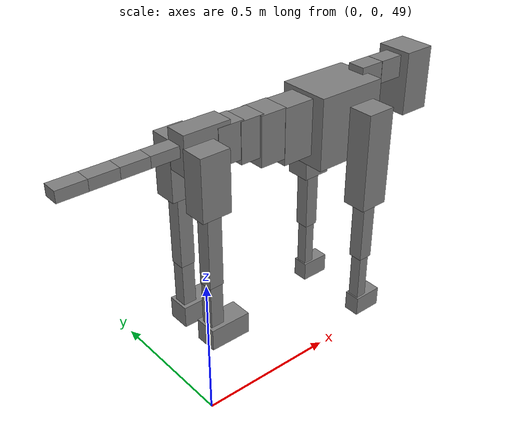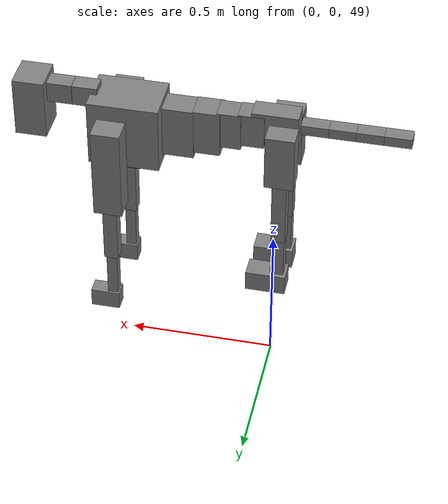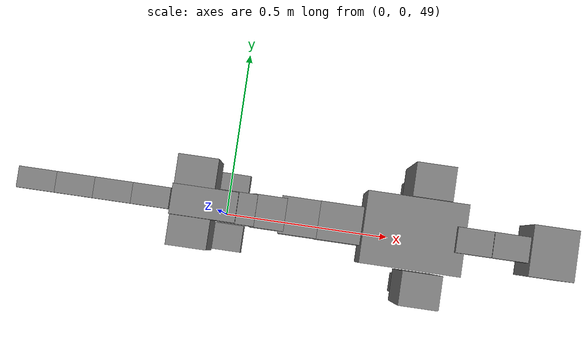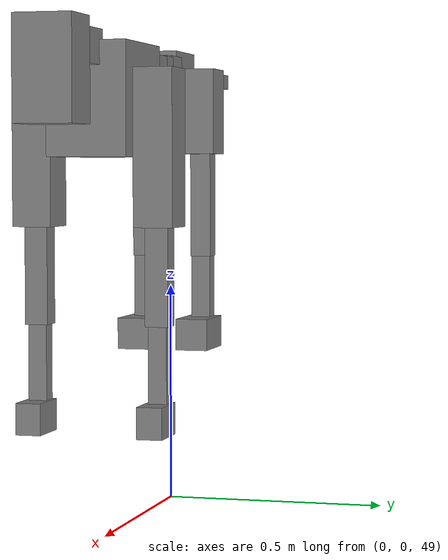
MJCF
<mujoco model="dog">

    <default>
        <joint armature="0.02" stiffness="1" damping="0.2" limited="true"/>
        <geom condim="3" friction="1 0.05 0.05" margin="0.01"/>
        <motor ctrllimited="true" ctrlrange="-1.0 1.0" forcelimited="true" gear="50"/>
    </default>

    <compiler inertiafromgeom="true" angle="radian"/>

    <option timestep="0.016" iterations="50" tolerance="1e-10" solver="Newton" jacobian="dense" cone="pyramidal"/>

    <size nconmax="20000" njmax="60000" nstack="5000000"/>
    <visual>
        <map force="0.1" zfar="30"/>
        <rgba haze="0.15 0.25 0.35 1"/>
        <quality shadowsize="2048"/>
        <global offwidth="800" offheight="800"/>
    </visual>

    <asset>
        <texture type="skybox" builtin="gradient" rgb1="0.3 0.5 0.7" rgb2="0 0 0" width="512" height="512"/>
        <texture name="texplane" type="2d" builtin="checker" rgb1=".2 .3 .4" rgb2=".1 0.15 0.2" width="512" height="512"
                 mark="cross" markrgb=".8 .8 .8"/>
        <texture name="texgeom" type="cube" builtin="flat" mark="cross" width="127" height="1278" rgb1="0.8 0.6 0.4"
                 rgb2="0.8 0.6 0.4" markrgb="1 1 1" random="0.01"/>

        <material name="matplane" reflectance="0.3" texture="texplane" texrepeat="1 1" texuniform="true"/>
        <material name="matgeom" texture="texgeom" texuniform="true" rgba="0.8 0.6 .4 1"/>
    </asset>

    <worldbody>
        <geom name="floor" pos="0 0 0" size="0 0 .25" type="plane" material="matplane" condim="3"/>

        <light directional="false" diffuse=".2 .2 .2" specular="0 0 0" pos="0 0 5" dir="0 0 -1" castshadow="false"/>
        <light mode="targetbodycom" target="torso" directional="false" diffuse=".8 .8 .8" specular="0.3 0.3 0.3"
               pos="0 0 4.0" dir="0 0 -1"/>

        <body name="root" pos="0 0 50">
            <freejoint name="root_1"/>
            <geom type="box" pos="0 0 -0.02" size="0.0774  0.0358  0.063" density="2030"/>

            <body name="spine1" pos="0.054 0 0">
                <joint name="spine1_y" axis="0 1 0" range="0 0.7" limited="true"/>
                <geom type="box" pos="0.02375 0 -0.03" size="0.04375  0.0375  0.05985" density="2030"/>

                <body name="spine2" pos="0.0612 0 0">
                    <joint name="spine2_y" axis="0 1 0" range="-0.15 0.15" limited="true"/>
                    <geom type="box" pos="0.03555  0  -0.04" size="0.04055  0.039  0.06615" density="2030"/>

                    <body name="spine3" pos="0.0730 0 0">
                        <joint name="spine3_y" axis="0 1 0" range="-0.15 0.15" limited="true"/>
                        <geom type="box" pos="0.03555  0  -0.057" size="0.04555  0.0445  0.081" density="2030"/>

                        <body name="spine4" pos="0.0780 0 0">
                            <joint name="spine4_y" axis="0 1 0" range="-0.15 0.15" limited="true"/>
                            <geom type="box" pos="0.05265  0  -0.07" size="0.05265  0.045  0.09135" density="2030"/>

                            <body name="torso" pos="0.1082 0 0">
                                <joint name="torso_y" axis="0 1 0" range="-0.15 0.15" limited="true"/>
                                <geom type="box" pos="0.11925  0  -0.085" size="0.11925  0.085  0.11745"
                                      density="2030"/>

                                <body name="neck1" pos="0.2160  0   0.0180">
                                    <joint name="neck1_y" axis="0 1 0" range="-1.2  -1" limited="true"/>
                                    <geom type="box" pos="0.0423  0  0" size="0.0423  0.03  0.036" density="2325"/>

                                    <body name="neck2" pos="0.0853  0  0">
                                        <joint name="neck2_y" axis="0 1 0" range="0.1  0" limited="true"/>
                                        <geom type="box" pos="0.0423  0  0" size="0.0423  0.03  0.036" density="2325"/>

                                        <body name="head" pos="0.0853  0  0">
                                            <joint name="head_y" axis="0 1 0" range="-0.3  -0.2" limited="true"/>
                                            <geom type="box" pos="0.0531  0  -0.055" size="0.0531  0.06  0.1044"
                                                  density="4030"/>

                                        </body>
                                    </body>
                                </body>

                                <body name="front_shoulder" pos="0.156  0   -0.0480">
                                    <joint name="front_shoulder_y" axis="0 1 0" range="-1 1.5" limited="true"/>
                                    <geom type="box" pos="0 0.13 -0.1359" size="0.0483  0.0413  0.1626" density="1158"/>
                                    <geom type="box" pos="0 -0.13 -0.1359" size="0.0483  0.0413  0.1626"
                                          density="1158"/>

                                    <body name="front_elbow" pos="0  0  -0.2718">
                                        <joint name="front_elbow_y" axis="0 1 0" range="-2 0" limited="true"/>
                                        <geom type="box" pos="0 0.13 -0.1152" size="0.0237  0.0242  0.1152"
                                              density="1081"/>
                                        <geom type="box" pos="0 -0.13 -0.1152" size="0.0237  0.0242  0.1152"
                                              density="1081"/>

                                        <body name="front_wrist" pos="0  0  -0.2304">
                                            <joint name="front_wrist_y" axis="0 1 0" range="-0.2 0" limited="true"/>
                                            <geom type="box" pos="0 0.13 -0.0869" size="0.0177  0.0196  0.1000"
                                                  density="1664"/>
                                            <geom type="box" pos="0 -0.13 -0.0869" size="0.0177  0.0196  0.1000"
                                                  density="1664"/>

                                            <body name="front_finger_end" pos="0  0  -0.1737">
                                                <joint name="front_finger_y" axis="0 1 0" range="-0.4 1"
                                                       limited="true"/>
                                                <geom type="box" pos="0.0269  0.13  -0.0181"
                                                      size="0.0493  0.0269  0.0331" density="1515"/>
                                                <geom type="box" pos="0.0269  -0.13  -0.0181"
                                                      size="0.0493  0.0269  0.0331" density="1515"/>

                                            </body>

                                        </body>
                                    </body>
                                </body>

                            </body>
                        </body>
                    </body>
                </body>
            </body>

            <body name="back_hip" pos="-0.03 0 -0.018">
                <joint name="back_hip_y" axis="0 1 0" range="-1.5 0.3" limited="true"/>
                <geom type="box" pos="0 0.07 -0.0755" size="0.0486  0.0381  0.0983" density="1154"/>
                <geom type="box" pos="0 -0.07 -0.0755" size="0.0486  0.0381  0.0983" density="1154"/>

                <body name="back_knee" pos="0  0  -0.1511">
                    <joint name="back_knee_y" axis="0 1 0" range="0 2.8" limited="true"/>
                    <geom type="box" pos="0 0.07 -0.1229" size="0.0240  0.0236  0.1385" density="1227"/>
                    <geom type="box" pos="0 -0.07 -0.1229" size="0.0240  0.0236  0.1385" density="1227"/>

                    <body name="back_ankle" pos="0  0  -0.2459">
                        <joint name="back_ankle_y" axis="0 1 0" range="-2.2 0" limited="true"/>
                        <geom type="box" pos="0 0.07 -0.0865" size="0.0219  0.0219  0.0977" density="1284"/>
                        <geom type="box" pos="0 -0.07 -0.0865" size="0.0219  0.0219  0.0977" density="1284"/>

                        <body name="back_toe_end" pos="0  0  -0.1730">
                            <joint name="back_toe_y" axis="0 1 0" range="-0.4 1" limited="true"/>
                            <geom type="box" pos="0.0369  0.07  -0.0210" size="0.0676  0.0369  0.0360" density="1515"/>
                            <geom type="box" pos="0.0369  -0.07  -0.0210" size="0.0676  0.0369  0.0360" density="1515"/>

                        </body>
                    </body>
                </body>
            </body>

            <body name="tail1" pos="-0.074 0 -0.006">
                <joint name="tail1_y" axis="0 1 0" range="-0.2 0.2" limited="true"/>
                <geom type="box" pos="-0.0536  0  0" size="0.045  0.025  0.0175" density="1587"/>

                <body name="tail2" pos="-0.09 0 0">
                    <joint name="tail2_y" axis="0 1 0" range="-0.2 0.2" limited="true"/>
                    <geom type="box" pos="-0.0536  0  0" size="0.045  0.025  0.0175" density="1587"/>

                    <body name="tail3" pos="-0.09 0 0">
                        <joint name="tail3_y" axis="0 1 0" range="-0.2 0.2" limited="true"/>
                        <geom type="box" pos="-0.0536  0  0" size="0.045  0.025  0.0175" density="1587"/>

                        <body name="tail4" pos="-0.09 0 0">
                            <joint name="tail4_y" axis="0 1 0" range="-0.2 0.2" limited="true"/>
                            <geom type="box" pos="-0.0536  0  0" size="0.045  0.025  0.0175" density="1587"/>

                        </body>
                    </body>
                </body>
            </body>
        </body>
    </worldbody>

    <actuator>
        <motor joint="spine1_y" forcerange="-150 150     "/>
        <motor joint="spine2_y" forcerange="-150 150     "/>
        <motor joint="spine3_y" forcerange="-150 150     "/>
        <motor joint="spine4_y" forcerange="-150 150     "/>
        <motor joint="torso_y" forcerange="-150 150     "/>
        <motor joint="neck1_y" forcerange="-100 100       "/>
        <motor joint="neck2_y" forcerange="-100 100       "/>
        <motor joint="head_y" forcerange="-150 150       "/>
        <motor joint="front_shoulder_y" forcerange="-179.92 195.53"/>
        <motor joint="front_elbow_y" forcerange="-175.41 100.82"/>
        <motor joint="front_wrist_y" forcerange="-106.66 50.28"/>
        <motor joint="front_finger_y" forcerange="-38.15 65.12"/>
        <motor joint="back_hip_y" forcerange="-333.27 375.30"/>
        <motor joint="back_knee_y" forcerange="-304.49 239.15"/>
        <motor joint="back_angle_y" forcerange="-78.53 172.01"/>
        <motor joint="back_toe_y" forcerange="-92.91 122.18"/>
        <motor joint="tail1_y" forcerange="-50 50     "/>
        <motor joint="tail2_y" forcerange="-50 50     "/>
        <motor joint="tail3_y" forcerange="-50 50     "/>
        <motor joint="tail4_y" forcerange="-50 50     "/>
    </actuator>
</mujoco>
